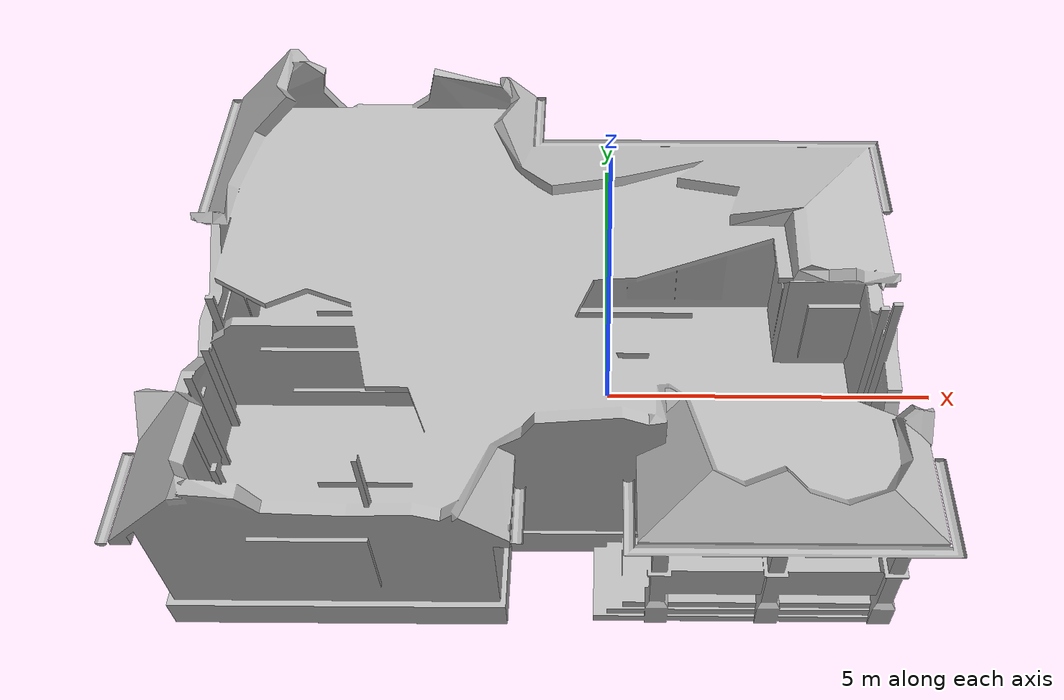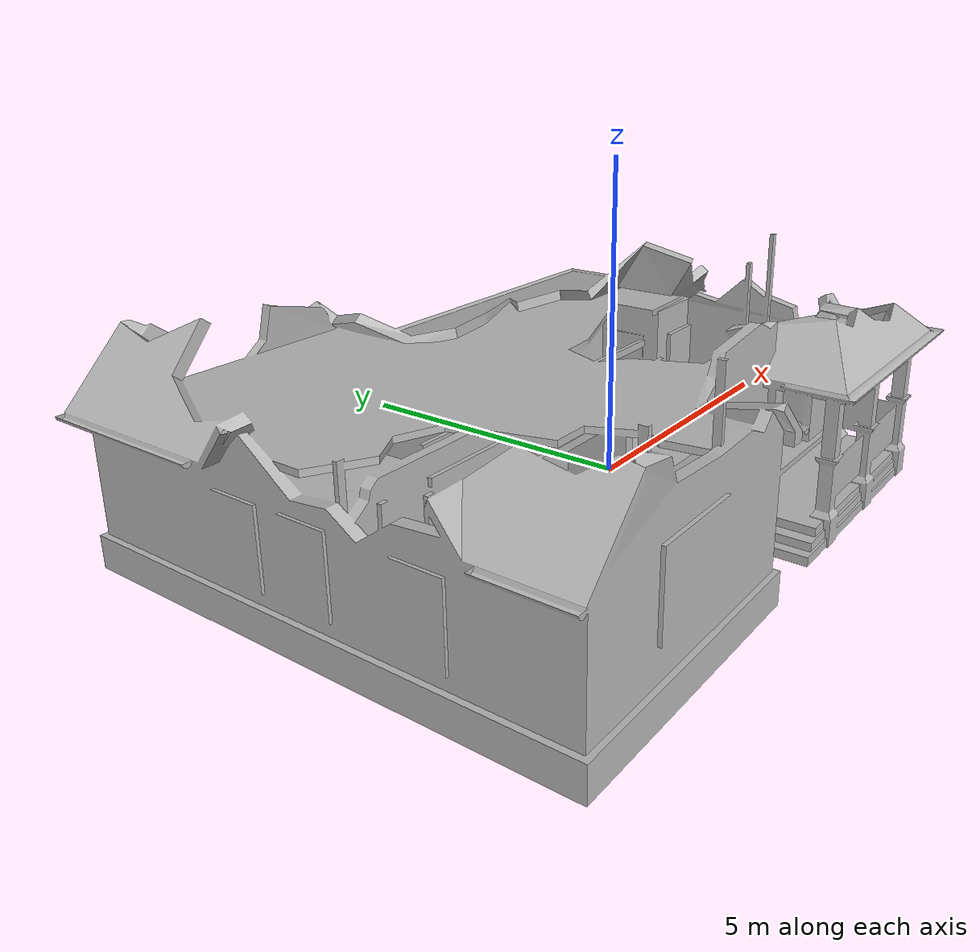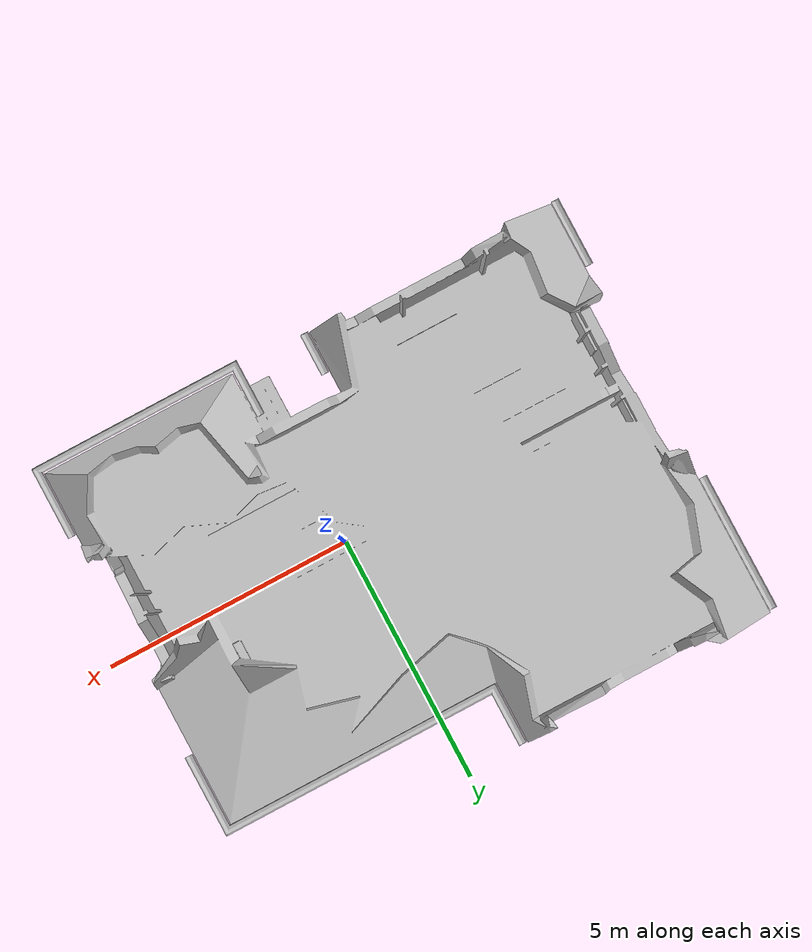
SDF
<sdf version="1.6">
 <world name="default">
  <scene><ambient>0.5 0.5 0.5 1</ambient><background>0.5 0.5 0.5 1</background><shadows>0</shadows></scene>
  <physics name="default_physics" default="0" type="ode">
   <ode>
    <solver>
     <type>quick</type>
     <iters>10</iters>
     <sor>1.3</sor>
     <use_dynamic_moi_rescaling>0</use_dynamic_moi_rescaling>
    </solver>
    <constraints>
     <cfm>0</cfm>
     <erp>0.2</erp>
     <contact_max_correcting_vel>10</contact_max_correcting_vel>
     <contact_surface_layer>0.001</contact_surface_layer>
    </constraints>
   </ode>
   <max_step_size>0.001</max_step_size>
   <real_time_factor>1</real_time_factor>
   <real_time_update_rate>1000</real_time_update_rate>
  </physics>
  <light name="directional_light_1" type="directional">
   <pose>0 20 20 0.1 0.1 0</pose>
   <diffuse>1 1 1 1</diffuse>
   <specular>1 1 1 1</specular>
   <attenuation><range>300</range></attenuation>
   <direction>0.1 0.1 -1</direction>
   <cast_shadows>0</cast_shadows>
  </light>
  <plugin name="ros_interface_plugin" filename="librotors_gazebo_ros_interface_plugin.so"/>
  <physics name="default_physics" default="0" type="ode">
   <ode>
    <solver>
     <type>quick</type>
     <iters>10</iters>
     <sor>1.3</sor>
     <use_dynamic_moi_rescaling>0</use_dynamic_moi_rescaling>
    </solver>
    <constraints>
     <cfm>0</cfm>
     <erp>0.2</erp>
     <contact_max_correcting_vel>100</contact_max_correcting_vel>
     <contact_surface_layer>0.001</contact_surface_layer>
    </constraints>
   </ode>
   <max_step_size>0.002</max_step_size>
   <real_time_factor>1</real_time_factor>
   <real_time_update_rate>500</real_time_update_rate>
  </physics>
  <gravity>0 0 -9.81</gravity>
  <magnetic_field>6e-06 2.3e-05 -4.2e-05</magnetic_field>
  <atmosphere type="adiabatic"/>
  <spherical_coordinates>
   <surface_model>EARTH_WGS84</surface_model>
   <latitude_deg>0</latitude_deg>
   <longitude_deg>0</longitude_deg>
   <elevation>0</elevation>
   <heading_deg>0</heading_deg>
  </spherical_coordinates>
  <model name="collapsed_house">
   <static>1</static>
   <link name="link">
    <collision name="collision">
     <geometry>
      <mesh><scale>1 1 1</scale><uri>model://collapsed_house/meshes/collapsed_house.dae</uri></mesh>
     </geometry>
    </collision>
    <visual name="visual">
     <geometry>
      <mesh><scale>1 1 1</scale><uri>model://collapsed_house/meshes/collapsed_house.dae</uri></mesh>
     </geometry>
    </visual>
   </link>
   <pose>-1 0.5 -0.54 0 -0 0</pose>
  </model>
 </world>
</sdf>
